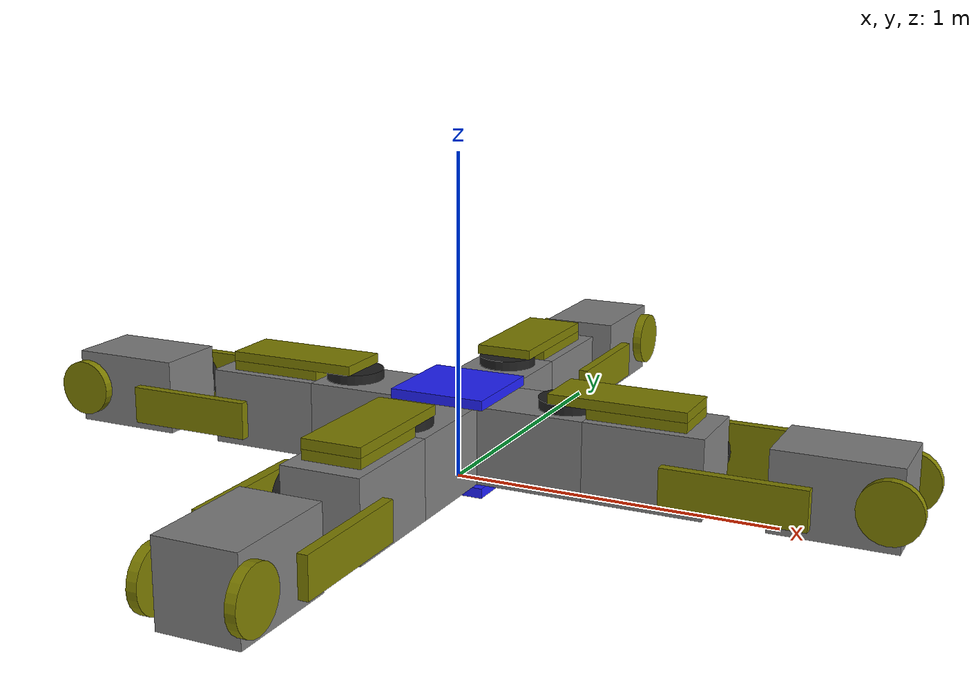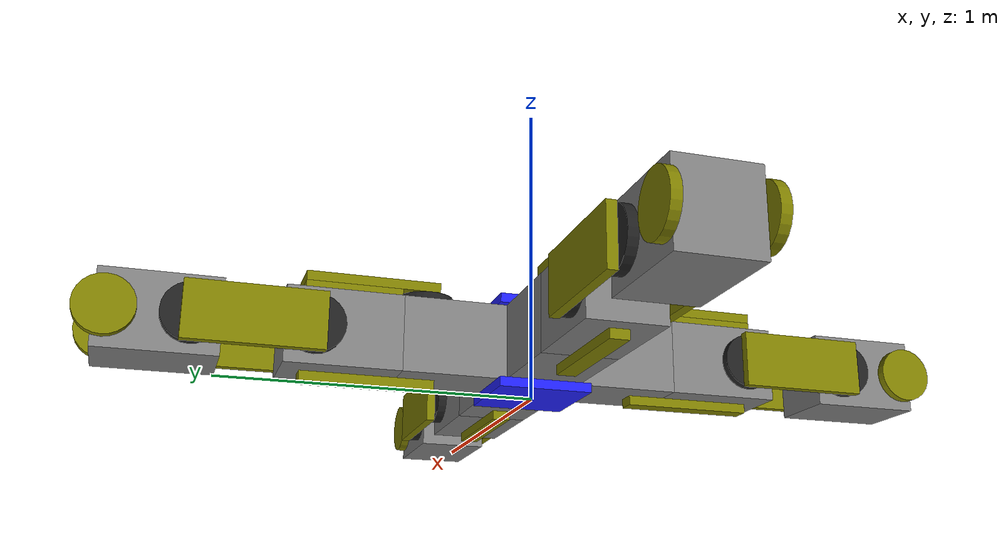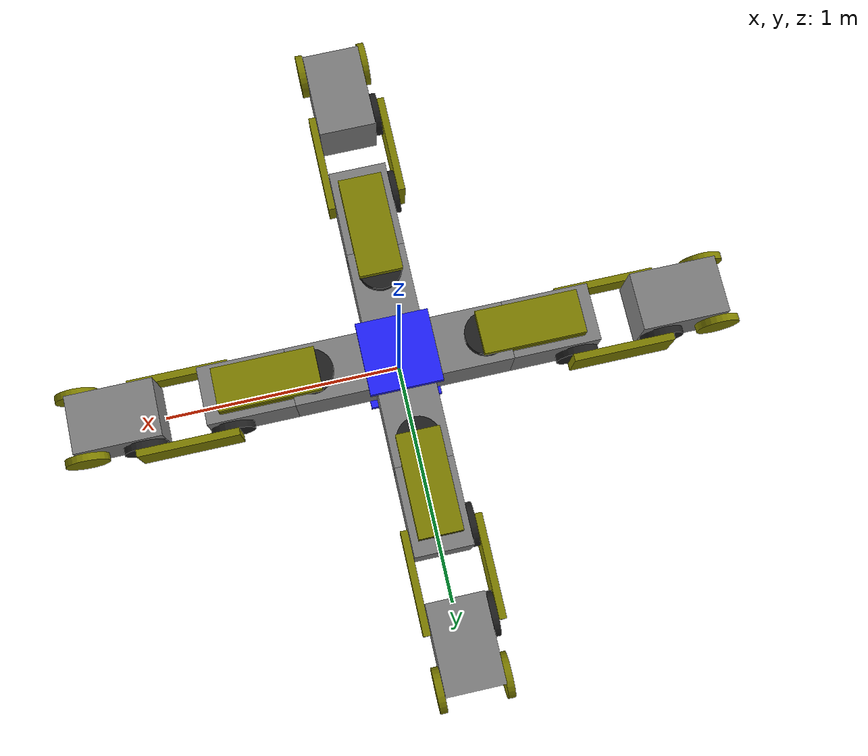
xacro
<?xml version="1.0"?>
<!-- +X/L is forward, +Y/W is left, +Z/H is up -->
<robot xmlns:xacro="http://www.ros.org/wiki/xacro" name="Hunker">

	<xacro:property name="pitch" value="0.06"/>
	<xacro:property name="heightoffset" value="-2.5"/>
	<xacro:property name="effortlimit" value="1024"/>
	<xacro:property name="velocitylimit" value="0.5"/>

	<xacro:macro name="white">
		<material name="white"><color rgba="0.875 0.875 0.875 1.0"/></material>
	</xacro:macro>
	<xacro:macro name="black">
		<material name="black"><color rgba="0.125 0.125 0.125 1.0"/></material>
	</xacro:macro>
	<xacro:macro name="blue">
		<material name="blue"><color rgba="0.125 0.125 1.0 1.0"/></material>
	</xacro:macro>
	<xacro:macro name="mud">
		<material name="mud"><color rgba="0.5 0.5 0.0 1.0"/></material>
	</xacro:macro>
	<xacro:macro name="translucent">
		<material name="translucent"><color rgba="0.5 0.5 0.5 1.0"/></material>
	</xacro:macro>

	<xacro:macro name="plate" params="l w h x y z *material">
		<visual>
			<geometry>
				<box size="${l*pitch} ${w*pitch} ${h*pitch}"/>
			</geometry>
			<origin xyz="${x*pitch} ${y*pitch} ${z*pitch}"/>
			<xacro:insert_block name="material"/>
		</visual>
	</xacro:macro>
	<xacro:macro name="wheelX" params="x y z *material">
		<visual>
			<geometry>
				<cylinder length="${0.5*pitch}" radius="${1.5*pitch}"/>
			</geometry>
			<origin  xyz="${x*pitch} ${y*pitch} ${z*pitch}" rpy="0 ${pi/2} 0"/>
			<xacro:insert_block name="material"/>
		</visual>
	</xacro:macro>
	<xacro:macro name="wheelY" params="x y z *material">
		<visual>
			<geometry>
				<cylinder length="${0.5*pitch}" radius="${1.5*pitch}"/>
			</geometry>
			<origin  xyz="${x*pitch} ${y*pitch} ${z*pitch}" rpy="${pi/2} 0 0"/>
			<xacro:insert_block name="material"/>
		</visual>
	</xacro:macro>
	<xacro:macro name="wheelZ" params="x y z *material">
		<visual>
			<geometry>
				<cylinder length="${0.5*pitch}" radius="${1.5*pitch}"/>
			</geometry>
			<origin  xyz="${x*pitch} ${y*pitch} ${z*pitch}"/>
			<xacro:insert_block name="material"/>
		</visual>
	</xacro:macro>

	<link name="base_link">
		<xacro:plate l="5" w="5" h="0.5" x="0" y="0" z="${-2.25 - heightoffset}"><xacro:blue/></xacro:plate>
		<xacro:plate l="5" w="5" h="0.5" x="0" y="0" z="${2.25 - heightoffset}"><xacro:blue/></xacro:plate>

		<xacro:plate l="6" w="4" h="4" x="-4.5" y="0" z="${0 - heightoffset}"><xacro:translucent/></xacro:plate>
		<xacro:plate l="4" w="6" h="4" x="0" y="4.5" z="${0 - heightoffset}"><xacro:translucent/></xacro:plate>
		<xacro:plate l="4" w="6" h="4" x="0" y="-4.5" z="${0 - heightoffset}"><xacro:translucent/></xacro:plate>
		<xacro:plate l="6" w="4" h="4" x="4.5" y="0" z="${0 - heightoffset}"><xacro:translucent/></xacro:plate>
	</link>

	<xacro:macro name="leg" params="name x y z rpy reflect:=1">
		<link name="${name}Hip">
			<xacro:wheelZ x="0" y="0" z="0.25"><xacro:black/></xacro:wheelZ>

			<xacro:plate l="7" w="3" h="0.5" x="-3" y="0" z="0.75"><xacro:mud/></xacro:plate>
			<xacro:plate l="5" w="3" h="0.5" x="-4" y="0" z="0.25"><xacro:mud/></xacro:plate>
			<xacro:plate l="7" w="1" h="0.5" x="-3" y="0" z="-4.25"><xacro:mud/></xacro:plate>

			<xacro:plate l="6" w="4" h="4" x="-4.5" y="0" z="-2"><xacro:translucent/></xacro:plate>
		</link>
		<joint name="${name}AimingHip" type="revolute">
			<parent link="base_link"/>
			<child link="${name}Hip"/>
			<axis xyz="0 0 1"/>
			<limit effort="${effortlimit}" lower="${-78*pi/180}" upper="${78*pi/180}" velocity="${velocitylimit}"/>
			<origin xyz="${x*pitch} ${y*pitch} ${z*pitch}" rpy="${rpy}"/>
		</joint>
		<link name="${name}Thigh">
			<xacro:wheelY x="0" y="${0.25*reflect}" z="0"><xacro:black/></xacro:wheelY>

			<xacro:plate l="7" w="0.5" h="3" x="-3" y="${0.75*reflect}" z="0"><xacro:mud/></xacro:plate>
			<xacro:plate l="7" w="0.5" h="2" x="-3" y="${-4.25*reflect}" z="-0.5"><xacro:mud/></xacro:plate>

			<xacro:wheelY x="-6" y="${0.25*reflect}" z="0"><xacro:black/></xacro:wheelY>
		</link>
		<joint name="${name}LiftingHip" type="revolute">
			<parent link="${name}Hip"/>
			<child link="${name}Thigh"/>
			<axis xyz="0 ${1 * reflect} 0"/>
			<limit effort="${effortlimit}" lower="${-125*pi/180}" upper="${125*pi/180}" velocity="${velocitylimit}"/>
			<origin xyz="${-6*pitch} ${2*reflect*pitch} ${-2*pitch}"/>
		</joint>
		<link name="${name}Calf">
			<xacro:plate l="6" w="4" h="4" x="-1.5" y="${-2*reflect}" z="0"><xacro:translucent/></xacro:plate>
		</link>
		<joint name="${name}Knee" type="revolute">
			<parent link="${name}Thigh"/>
			<child link="${name}Calf"/>
			<axis xyz="0 ${-1 * reflect} 0"/>
			<limit effort="${effortlimit}" lower="${-130*pi/180}" upper="${130*pi/180}" velocity="${velocitylimit}"/>
			<origin xyz="${-6*pitch} 0 0"/>
		</joint>
		<link name="${name}Foot">
			<xacro:wheelY x="0" y="2.25" z="0"><xacro:mud/></xacro:wheelY>
			<xacro:wheelY x="0" y="-2.25" z="0"><xacro:mud/></xacro:wheelY>
		</link>
		<joint name="${name}Ankle" type="fixed">
			<parent link="${name}Calf"/>
			<child link="${name}Foot"/>
			<origin xyz="${-4 * pitch} ${-2 * reflect * pitch} 0"/>
		</joint>
	</xacro:macro>

	<xacro:leg name="backRight" x="-6" y="0" z="${2 - heightoffset}" rpy="0 0 0"/>
	<xacro:leg name="backLeft" x="0" y="6" z="${2 - heightoffset}" rpy="0 0 ${-pi/2}" reflect="-1"/>
	<xacro:leg name="frontRight" x="0" y="-6" z="${2 - heightoffset}" rpy="0 0 ${pi/2}"/>
	<xacro:leg name="frontLeft" x="6" y="0" z="${2 - heightoffset}" rpy="0 0 ${pi}" reflect="-1"/>
</robot>
